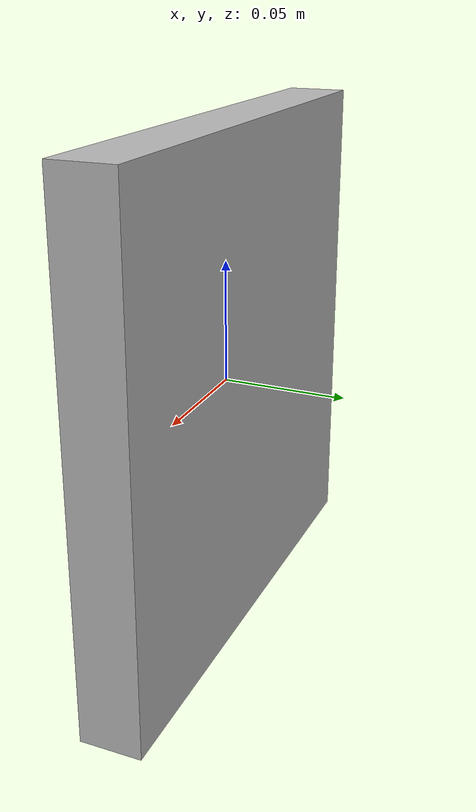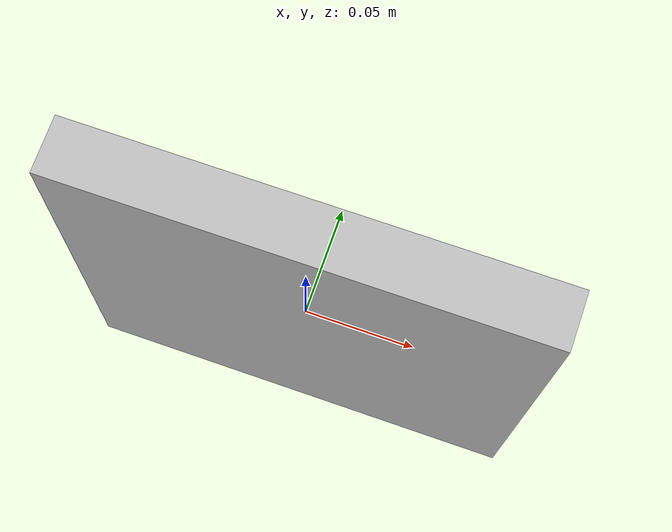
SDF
<?xml version="1.0" ?>
<sdf version="1.6">
  <model name="apriltag">
    <static>true</static>
    <link name="box">
      <pose>0 0 0 0 0 0</pose>
      <collision name="collision">
        <geometry>
          <box>
            <size>0.21 0.025 0.21</size>
          </box>
        </geometry>
      </collision>
      <visual name="visual">
        <geometry>
          <box>
            <size>0.21 0.025 0.21</size>
          </box>
        </geometry>
        <material>
          <script>
            <uri>model://apriltag/materials/scripts</uri>
            <uri>model://apriltag/materials/textures</uri>
            <name>apriltag</name>
          </script>
        </material>
      </visual>
    </link>
  </model>
</sdf>
